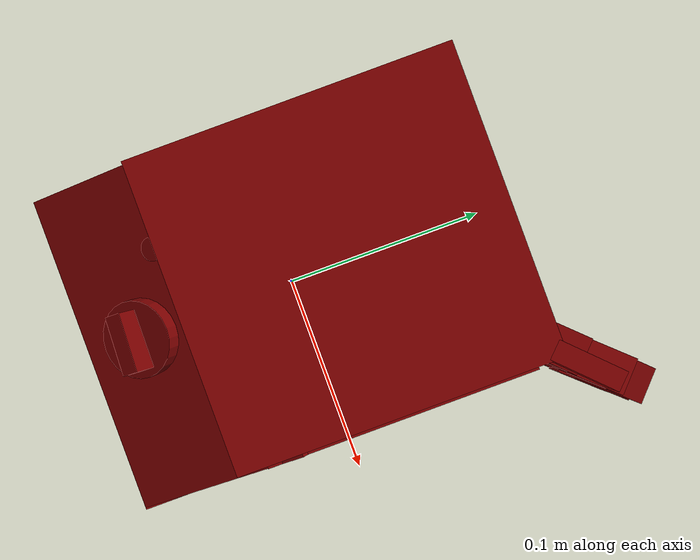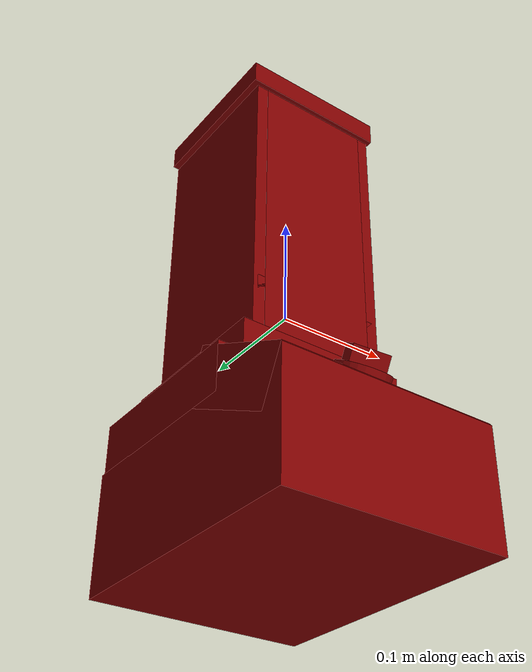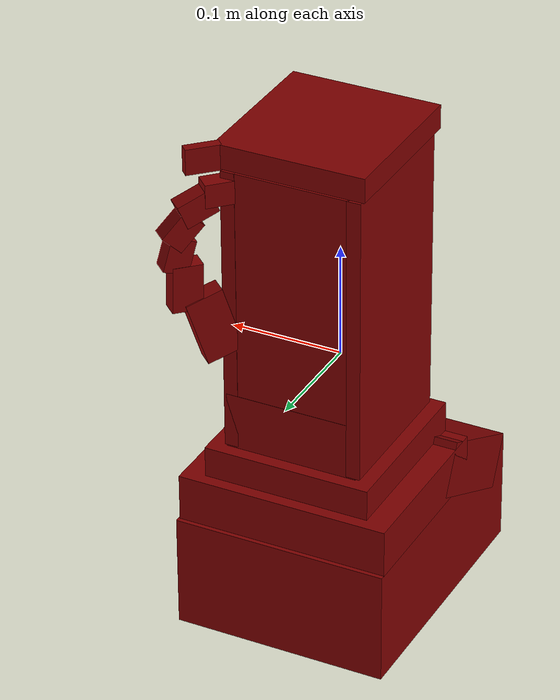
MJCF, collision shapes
<?xml version='1.0' encoding='UTF-8'?>
<mujoco model="model">
  <option timestep="0.0005" gravity="0.0 0.0 -9.81"/>
  <compiler angle="radian"/>
  <asset>
    <mesh file="visuals/Blade001.obj" name="Blade001_vis"/>
    <mesh file="visuals/Body001.obj" name="Body001_vis"/>
    <mesh file="visuals/Button001.obj" name="Button001_vis"/>
    <mesh file="visuals/Jug001.obj" name="Jug001_vis"/>
    <mesh file="visuals/Jug001_Clear.obj" name="Jug001_Clear_vis"/>
    <mesh file="visuals/Knob001.obj" name="Knob001_vis"/>
    <mesh file="visuals/Lid001.obj" name="Lid001_vis"/>
    <texture file="visuals/T_BC001.png" name="Body001_material" type="2d"/>
    <material name="Body001_material" rgba="1 1 1 1.0" texture="Body001_material" shininess="0.141421377658844" specular="0.5"/>
    <texture file="visuals/T_BC001.png" name="Button001_material" type="2d"/>
    <material name="Button001_material" rgba="1 1 1 1.0" texture="Button001_material" shininess="0.141421377658844" specular="1"/>
    <texture file="visuals/T_BC001.png" name="Jug001_Clear_material" type="2d"/>
    <material name="Jug001_Clear_material" rgba="1 1 1 0.699999988079071" texture="Jug001_Clear_material" shininess="0.141421377658844" specular="0.3103448502657381"/>
    <texture file="visuals/T_BC001.png" name="Blade001_material" type="2d"/>
    <material name="Blade001_material" rgba="1 1 1 1.0" texture="Blade001_material" shininess="0.141421377658844" specular="5"/>
    <texture file="visuals/T_BC001.png" name="Jug001_material" type="2d"/>
    <material name="Jug001_material" rgba="1 1 1 1.0" texture="Jug001_material" shininess="0.141421377658844" specular="1"/>
    <texture file="visuals/T_BC001.png" name="Lid001_material" type="2d"/>
    <material name="Lid001_material" rgba="1 1 1 1.0" texture="Lid001_material" shininess="0.141421377658844" specular="1"/>
    <texture file="visuals/T_BC001.png" name="Knob001_material" type="2d"/>
    <material name="Knob001_material" rgba="1 1 1 1.0" texture="Knob001_material" shininess="0.141421377658844" specular="1"/>
  </asset>
  <default>
    <default class="visual">
      <geom conaffinity="0" contype="0" group="1" type="mesh"/>
    </default>
    <default class="collision">
      <geom group="0" rgba="0.5 0 0 0.5"/>
    </default>
    <default class="spawn">
      <geom group="0" rgba="1 1 1 0.5" contype="0" conaffinity="0"/>
      <site group="0" rgba="1 1 1 0.5"/>
    </default>
    <default class="region">
      <geom group="1" conaffinity="0" contype="0" rgba="0 1 0 0"/>
    </default>
  </default>
  <worldbody>
    <body>
      <body name="object">
        <geom mesh="Body001_vis" type="mesh" solimp="0.998 0.998 0.001" solref="0.001 1" friction="0.95 0.3 0.1" class="visual" material="Body001_material"/>
        <geom class="collision" type="box" pos="-0.000021 -0.004417 -0.174989" size="0.09426623582839966 0.12018150091171265 0.05047569051384926" quat="1.0 0.0 0.0 0.0" density="1000.0"/>
        <geom class="collision" type="box" pos="-0.000642 -0.065748 -0.121905" size="0.09364525973796844 0.053700391203165054 0.023921413347125053" quat="0.9748296737670898 0.22295093536376953 0.0 0.0" density="1000.0"/>
        <geom class="collision" type="box" pos="0.000181 0.025955 -0.069465" size="0.0737367644906044 0.0752071812748909 0.013908842578530312" quat="1.0 0.0 0.0 0.0" density="1000.0"/>
        <geom class="collision" type="box" pos="-0.000642 0.031699 -0.104046" size="0.09364525973796844 0.08006376773118973 0.02117438241839409" quat="1.0 0.0 0.0 0.0" density="1000.0"/>
        <body name="Button001">
          <joint axis="0.0 0.4999999403953552 -0.8660253882408142" pos="-0.043678 -0.065305 -0.088176" limited="true" name="Button001_joint" range="0.0 0.002" type="slide" damping="1" frictionloss="1" armature=".01" stiffness="0.5" springref="-0.5"/>
          <geom mesh="Button001_vis" type="mesh" solimp="0.998 0.998 0.001" solref="0.001 1" friction="0.95 0.3 0.1" class="visual" material="Button001_material"/>
          <geom class="collision" type="cylinder" pos="-0.043892 -0.066432 -0.086464" size="0.006768199615180492 0.0021915838588029146" quat="0.9639899730682373 0.2659386098384857 -4.0169945262216606e-17 -4.33204661115555e-18" density="1000.0"/>
        </body>
        <body name="Jug001_Clear">
          <geom class="region" name="reg_int" type="box" pos="0.004460499999999999 0.023549 0.10582849999999999" size="0.0410395 0.039783 0.1101075"/>
          <joint axis="0.0 0.0 1.0" pos="0.013737 0.039527 0.080513" limited="true" name="Jug001_Clear_joint" range="0.0 0.05" type="slide" damping="1" frictionloss="1" armature=".01" stiffness="0.05"/>
          <geom mesh="Jug001_Clear_vis" type="mesh" solimp="0.998 0.998 0.001" solref="0.001 1" friction="0.95 0.3 0.1" class="visual" material="Jug001_Clear_material"/>
          <geom class="collision" type="box" pos="-0.000332 -0.037001 0.072717" size="0.05070013180375099 0.006148476153612137 0.1268603503704071" quat="1.0 0.0 0.0 0.0" density="1000.0"/>
          <geom class="collision" type="box" pos="-0.055550 0.023775 0.072717" size="0.0061484710313379765 0.06666272133588791 0.1268603503704071" quat="1.0 0.0 0.0 0.0" density="1000.0"/>
          <geom class="collision" type="box" pos="0.054630 0.023775 0.072717" size="0.0061484710313379765 0.06666272133588791 0.1268603503704071" quat="1.0 0.0 0.0 0.0" density="1000.0"/>
          <geom class="collision" type="box" pos="-0.000332 0.084078 0.072717" size="0.05070013180375099 0.006148476153612137 0.1268603503704071" quat="1.0 0.0 0.0 0.0" density="1000.0"/>
          <geom class="collision" type="box" pos="0.074564 0.106045 0.173134" size="0.008146869018673897 0.014489687979221344 0.01081995852291584" quat="0.9147748947143555 -0.18078604340553284 0.07120805233716965 -0.35416480898857117" density="1000.0"/>
          <geom class="collision" type="box" pos="0.061665 0.092812 0.183201" size="0.008105769753456116 0.012879735790193081 0.01025380939245224" quat="0.9265184998512268 0.0 -0.0 -0.376249223947525" density="1000.0"/>
          <geom class="collision" type="box" pos="0.083431 0.115377 0.155256" size="0.008146869018673897 0.014489687979221344 0.01081995852291584" quat="0.8578605055809021 -0.36547520756721497 0.14268623292446136 -0.33187922835350037" density="1000.0"/>
          <geom class="collision" type="box" pos="0.081761 0.113306 0.103434" size="0.008295845240354538 0.020325474441051483 0.012872149236500263" quat="0.6699399948120117 -0.6485963463783264 0.2521308958530426 -0.2587145268917084" density="1000.0"/>
          <geom class="collision" type="box" pos="0.085916 0.117542 0.133615" size="0.008146869018673897 0.014489687979221344 0.01081995852291584" quat="0.7432904839515686 -0.5630417466163635 0.21907974779605865 -0.2872408926486969" density="1000.0"/>
          <geom class="collision" type="box" pos="0.066383 0.098005 0.064534" size="0.008534789085388184 0.029685476794838905 0.016163652762770653" quat="0.551007866859436 -0.7522546648979187 0.2921375334262848 -0.2125062644481659" density="1000.0"/>
          <geom class="collision" type="box" pos="0.000465 0.023775 -0.030182" size="0.058229099959135056 0.06666272133588791 0.02488800324499607" quat="1.0 0.0 0.0 0.0" density="1000.0"/>
          <body name="Blade001">
            <joint axis="0.0 0.0 1.0" pos="0.002837 0.022113 0.005594" limited="false" name="Blade001_joint" range="0 360" type="hinge" damping="1" frictionloss="1" armature=".01" stiffness="0.05"/>
            <geom mesh="Blade001_vis" type="mesh" solimp="0.998 0.998 0.001" solref="0.001 1" friction="0.95 0.3 0.1" class="visual" material="Blade001_material"/>
            <geom class="collision" type="cylinder" pos="0.002237 0.022239 0.002482" size="0.010992518626153469 0.0019860181491822004" quat="1.0 0.0 0.0 0.0" density="1000.0"/>
            <geom class="collision" type="box" pos="-0.006228 0.037537 0.004608" size="0.004382163751870394 0.009873579256236553 0.0014099429827183485" quat="0.9596688747406006 0.10713987052440643 0.02883859910070896 0.2583118677139282" density="1000.0"/>
            <geom class="collision" type="box" pos="-0.013313 0.049744 0.011198" size="0.004382163751870394 0.006865778472274542 0.0006997823365963995" quat="0.9061315655708313 0.33371978998184204 0.08982662111520767 0.24390141665935516" density="1000.0"/>
            <geom class="collision" type="box" pos="-0.015032 0.021994 0.009918" size="0.002498094690963626 0.003913902677595615 0.00039891761844046414" quat="0.657715380191803 0.2422304004430771 0.246499702334404 0.6693077087402344" density="1000.0"/>
            <geom class="collision" type="box" pos="-0.007445 0.022135 0.005486" size="0.002498094690963626 0.005628528073430061 0.000803751521743834" quat="0.6832320690155029 0.15710075199604034 0.1570800542831421 0.6955854892730713" density="1000.0"/>
            <geom class="collision" type="box" pos="-0.013687 -0.006275 0.011198" size="0.004382163751870394 0.006865778472274542 0.0006997823365963995" quat="0.24510179460048676 0.09026868641376495 0.33360037207603455 0.905807614326477" density="1000.0"/>
            <geom class="collision" type="box" pos="-0.006570 0.005913 0.004608" size="0.004382163751870394 0.009873579256236553 0.0014099429827183485" quat="0.2595832347869873 0.02898053452372551 0.10710156708955765 0.9593257904052734" density="1000.0"/>
            <geom class="collision" type="box" pos="0.021137 0.021731 0.004608" size="0.004382163751870394 0.009873579256236553 0.0014099429827183485" quat="0.7020411491394043 0.07837764918804169 -0.07853382080793381 -0.7034398317337036" density="1000.0"/>
            <geom class="collision" type="box" pos="0.035251 0.021703 0.011198" size="0.004382163751870394 0.006865778472274542 0.0006997823365963995" quat="0.6628762483596802 0.24413099884986877 -0.24461738765239716 -0.6641968488693237" density="1000.0"/>
            <geom class="collision" type="box" pos="0.009187 0.011806 0.005839" size="0.0024980942253023386 0.005628528073430061 0.000803751521743834" quat="0.26403868198394775 0.05822960287332535 -0.21439240872859955 -0.9385780692100525" density="1000.0"/>
            <geom class="collision" type="box" pos="0.013147 0.005333 0.010271" size="0.0024980942253023386 0.003913902677595615 0.00039891761844046414" quat="0.2539174556732178 0.09351541101932526 -0.33270493149757385 -0.903376042842865" density="1000.0"/>
            <geom class="collision" type="box" pos="0.012844 0.038601 0.010032" size="0.0024980944581329823 0.003913902677595615 0.00039891761844046414" quat="0.9036177396774292 0.3327938914299011 -0.09319815039634705 -0.25305595993995667" density="1000.0"/>
            <geom class="collision" type="box" pos="0.008910 0.032112 0.005600" size="0.0024980942253023386 0.005628528073430061 0.0008037514635361731" quat="0.9389471411705017 0.21339333057403564 -0.06179073452949524 -0.2627231776714325" density="1000.0"/>
          </body>
          <body name="Jug001">
            <geom mesh="Jug001_vis" type="mesh" solimp="0.998 0.998 0.001" solref="0.001 1" friction="0.95 0.3 0.1" class="visual" material="Jug001_material"/>
            <geom class="collision" type="box" pos="-0.000250 0.023589 -0.027340" size="0.053218137472867966 0.05842722952365875 0.02310650795698166" quat="1.0 0.0 0.0 0.0" density="1000.0"/>
            <geom class="collision" type="cylinder" pos="0.002936 0.021580 -0.003029" size="0.03135425224900246 0.0020198319107294083" quat="1.0 0.0 0.0 0.0" density="1000.0"/>
          </body>
          <body name="Lid001">
            <joint axis="0.0 0.0 1.0" pos="0.009085 0.033017 0.207958" limited="true" name="Lid001_joint" range="0.0 0.05" type="slide" damping="1" frictionloss="1" armature=".01" stiffness="0.05"/>
            <geom mesh="Lid001_vis" type="mesh" solimp="0.998 0.998 0.001" solref="0.001 1" friction="0.95 0.3 0.1" class="visual" material="Lid001_material"/>
            <geom class="collision" type="box" pos="0.071727 0.098670 0.212369" size="0.004358070436865091 0.014879566617310047 0.011254552751779556" quat="0.9234328269958496 0.0 -0.0 -0.38376015424728394" density="1000.0"/>
            <geom class="collision" type="box" pos="-0.000295 0.023566 0.212972" size="0.06565457582473755 0.06871627271175385 0.010651204735040665" quat="1.0 0.0 0.0 0.0" density="1000.0"/>
          </body>
        </body>
        <body name="Knob001">
          <joint axis="0.0 0.5 -0.8660253882408142" pos="0.000318 -0.094622 -0.094189" limited="true" name="Knob001_joint" range="0.0 3.141592653589793" type="hinge" damping="0.05" armature="0.001"/>
          <geom mesh="Knob001_vis" type="mesh" solimp="0.998 0.998 0.001" solref="0.001 1" friction="0.95 0.3 0.1" class="visual" material="Knob001_material"/>
          <geom class="collision" type="cylinder" pos="0.000413 -0.091335 -0.099543" size="0.022349528968334198 0.004747109953314066" quat="0.9639899730682373 0.2659386098384857 -4.0169945262216606e-17 -4.33204661115555e-18" density="1000.0"/>
          <geom class="collision" type="box" pos="0.000668 -0.096414 -0.090383" size="0.005063396412879229 0.017123965546488762 0.009264831431210041" quat="0.6668792963027954 0.21136312186717987 0.17960307002067566 -0.6916215419769287" density="1000.0"/>
        </body>
        <geom class="region" name="reg_main" type="box" pos="1.000000000001e-06 -0.004121 6.0000000000060005e-06" size="0.094212 0.119736 0.225516"/>
      </body>
    </body>
  </worldbody>
  <actuator>
    <motor name="Button001_joint_actuator" joint="Button001_joint" gear="0.2"/>
    <motor name="Jug001_Clear_joint_actuator" joint="Jug001_Clear_joint" gear="100"/>
    <motor name="Knob001_joint_actuator" joint="Knob001_joint" gear="10"/>
    <motor name="Blade001_joint_actuator" joint="Blade001_joint" gear="10"/>
    <motor name="Lid001_joint_actuator" joint="Lid001_joint" gear="15"/>
  </actuator>
</mujoco>
